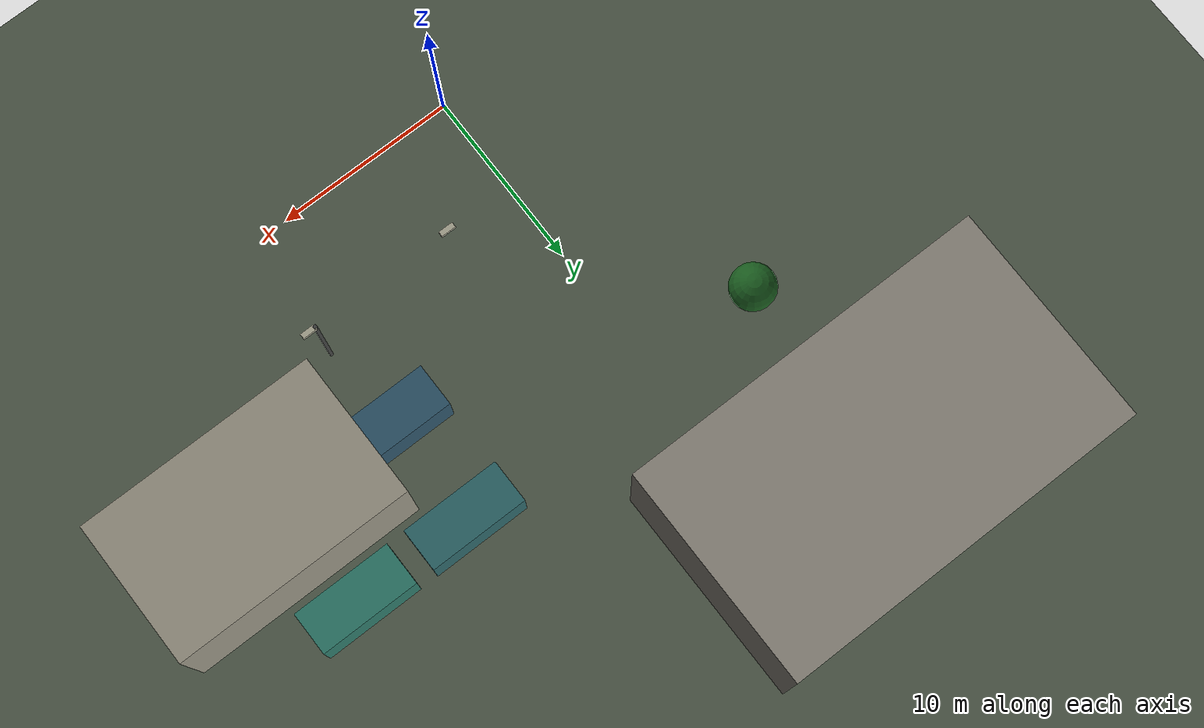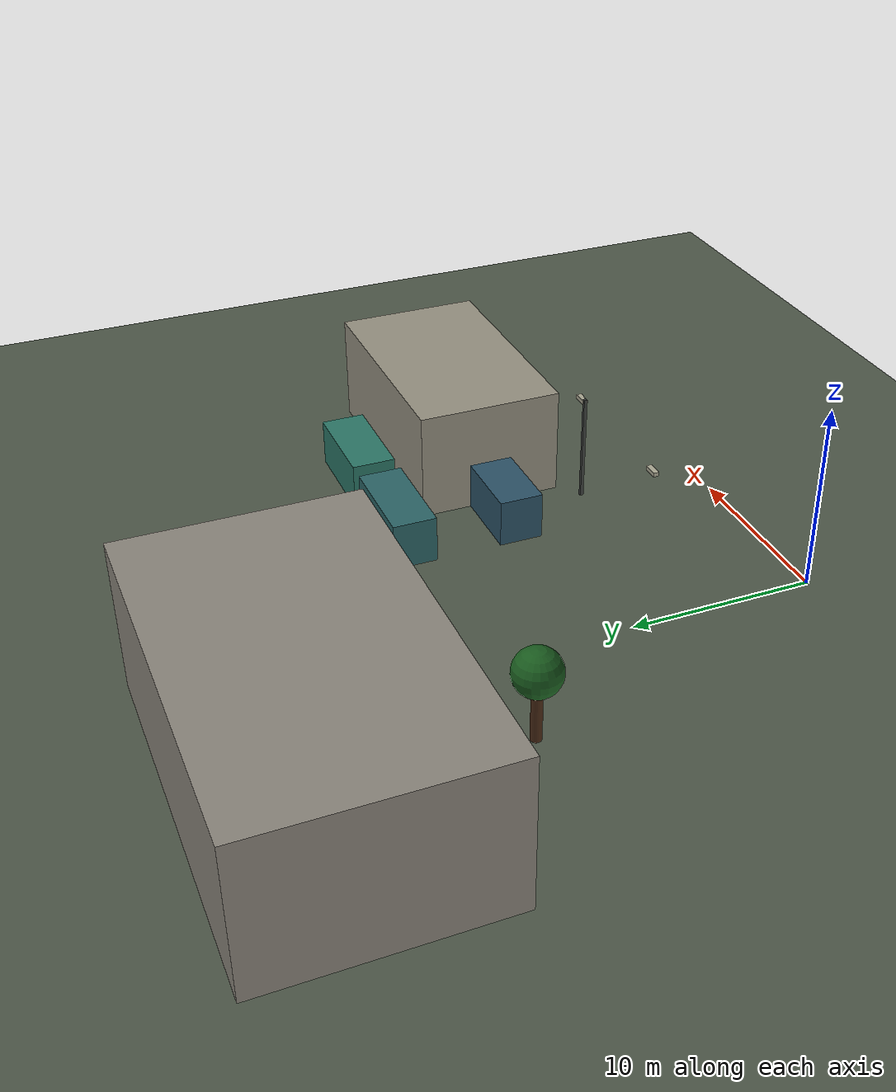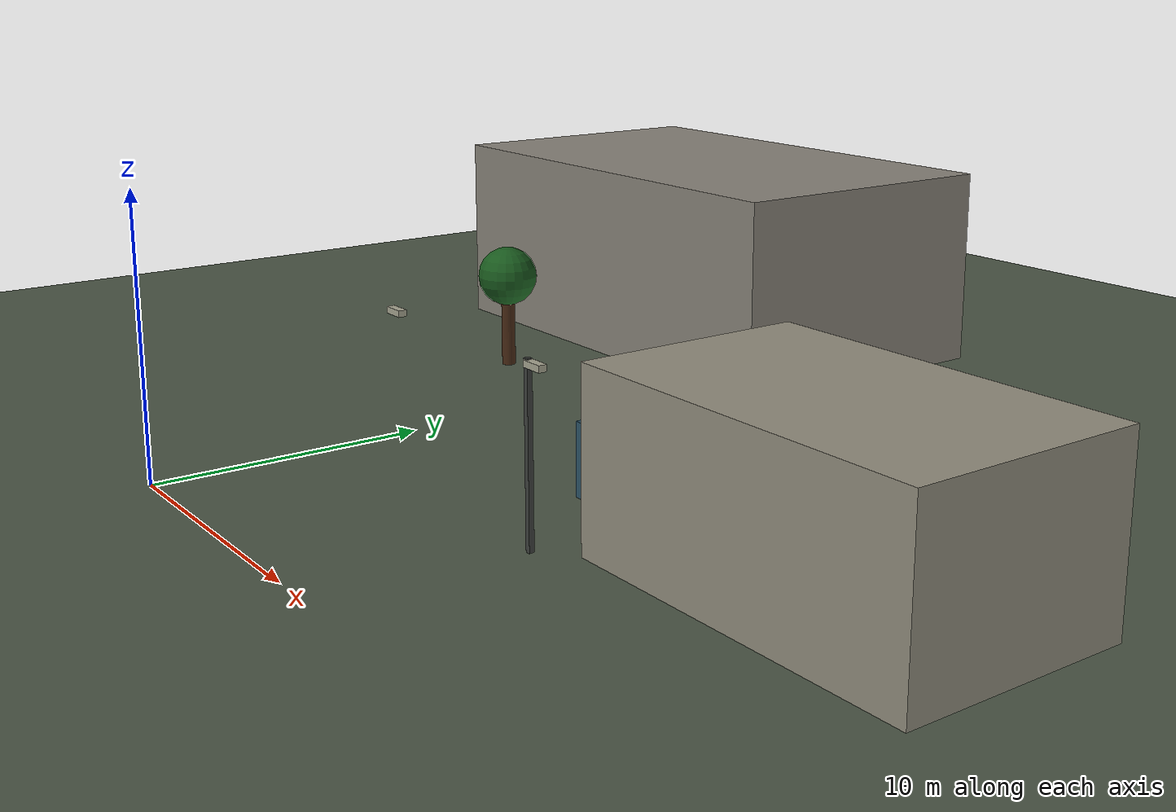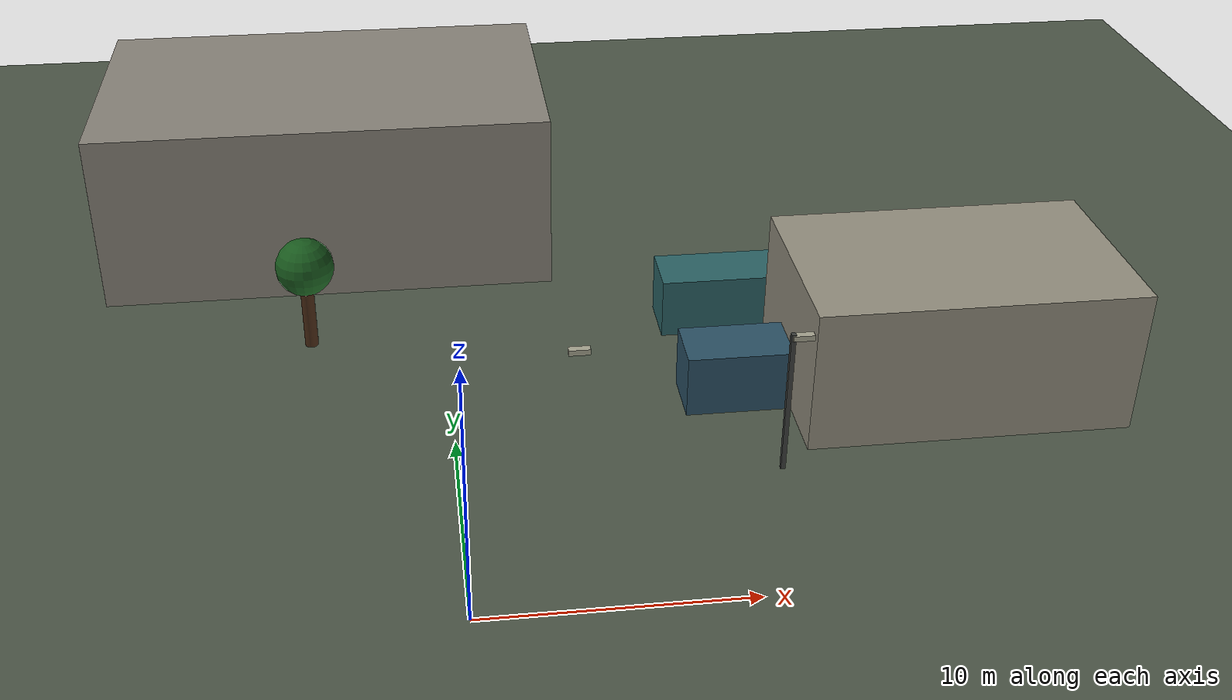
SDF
<sdf version="1.9">
 <world name="gsi_search_world_v2_industrial">
  <model name="ground_plane">
   <static>true</static>
   <link name="link">
    <collision name="collision">
     <geometry><plane><normal>0 0 1</normal><size>130 110</size></plane></geometry>
    </collision>
    <visual name="visual">
     <geometry><plane><normal>0 0 1</normal><size>130 110</size></plane></geometry>
     <material>
      <ambient>0.3 0.34 0.28 1</ambient>
      <diffuse>0.3 0.34 0.28 1</diffuse>
      <specular>0.12 0.12 0.12 1</specular>
     </material>
    </visual>
   </link>
  </model>
  <model name="warehouse-b">
   <static>true</static>
   <pose>-5 28 4 0 0 0</pose>
   <link name="link">
    <collision name="collision"><geometry><box><size>20 12 8</size></box></geometry></collision>
    <visual name="visual">
     <geometry><box><size>20 12 8</size></box></geometry>
     <material>
      <ambient>0.54 0.52 0.48 1</ambient>
      <diffuse>0.54 0.52 0.48 1</diffuse>
      <specular>0.12 0.12 0.12 1</specular>
     </material>
    </visual>
   </link>
  </model>
  <model name="dispatch-office">
   <static>true</static>
   <pose>20 12 3 0 0 0</pose>
   <link name="link">
    <collision name="collision"><geometry><box><size>13 8 6</size></box></geometry></collision>
    <visual name="visual">
     <geometry><box><size>13 8 6</size></box></geometry>
     <material>
      <ambient>0.58 0.56 0.5 1</ambient>
      <diffuse>0.58 0.56 0.5 1</diffuse>
      <specular>0.12 0.12 0.12 1</specular>
     </material>
    </visual>
   </link>
  </model>
  <model name="tree-01">
   <static>true</static>
   <pose>-10.3892 25.4747 0 0 0 0</pose>
   <link name="tree">
    <collision name="trunk_collision">
     <pose>0 0 2.00491 0 0 0</pose>
     <geometry><cylinder><radius>0.32</radius><length>4.00982</length></cylinder></geometry>
    </collision>
    <visual name="trunk">
     <pose>0 0 2.00491 0 0 0</pose>
     <geometry><cylinder><radius>0.28</radius><length>4.00982</length></cylinder></geometry>
     <material>
      <ambient>0.28 0.16 0.08 1</ambient>
      <diffuse>0.28 0.16 0.08 1</diffuse>
      <specular>0.12 0.12 0.12 1</specular>
     </material>
    </visual>
    <visual name="canopy">
     <pose>0 0 4.46809 0 0 0</pose>
     <geometry><sphere><radius>1.43208</radius></sphere></geometry>
     <material>
      <ambient>0.1 0.36 0.12 1</ambient>
      <diffuse>0.1 0.36 0.12 1</diffuse>
      <specular>0.12 0.12 0.12 1</specular>
     </material>
    </visual>
   </link>
  </model>
  <model name="tree-06">
   <static>true</static>
   <pose>-5.77109 17.8427 0 0 0 0</pose>
   <link name="tree">
    <collision name="trunk_collision">
     <pose>0 0 1.70983 0 0 0</pose>
     <geometry><cylinder><radius>0.32</radius><length>3.41966</length></cylinder></geometry>
    </collision>
    <visual name="trunk">
     <pose>0 0 1.70983 0 0 0</pose>
     <geometry><cylinder><radius>0.28</radius><length>3.41966</length></cylinder></geometry>
     <material>
      <ambient>0.28 0.16 0.08 1</ambient>
      <diffuse>0.28 0.16 0.08 1</diffuse>
      <specular>0.12 0.12 0.12 1</specular>
     </material>
    </visual>
    <visual name="canopy">
     <pose>0 0 3.81048 0 0 0</pose>
     <geometry><sphere><radius>1.22131</radius></sphere></geometry>
     <material>
      <ambient>0.1 0.36 0.12 1</ambient>
      <diffuse>0.1 0.36 0.12 1</diffuse>
      <specular>0.12 0.12 0.12 1</specular>
     </material>
    </visual>
   </link>
  </model>
  <model name="container-01">
   <static>true</static>
   <pose>12 12 1.3 0 0 0</pose>
   <link name="link">
    <collision name="collision"><geometry><box><size>5.5 2.4 2.6</size></box></geometry></collision>
    <visual name="visual">
     <geometry><box><size>5.5 2.4 2.6</size></box></geometry>
     <material>
      <ambient>0.17 0.32 0.4 1</ambient>
      <diffuse>0.17 0.32 0.4 1</diffuse>
      <specular>0.12 0.12 0.12 1</specular>
     </material>
    </visual>
   </link>
  </model>
  <model name="container-02">
   <static>true</static>
   <pose>18.5 12 1.3 0 0 0</pose>
   <link name="link">
    <collision name="collision"><geometry><box><size>5.5 2.4 2.6</size></box></geometry></collision>
    <visual name="visual">
     <geometry><box><size>5.5 2.4 2.6</size></box></geometry>
     <material>
      <ambient>0.17 0.39 0.4 1</ambient>
      <diffuse>0.17 0.39 0.4 1</diffuse>
      <specular>0.12 0.12 0.12 1</specular>
     </material>
    </visual>
   </link>
  </model>
  <model name="container-08">
   <static>true</static>
   <pose>12 18 1.3 0 0 0</pose>
   <link name="link">
    <collision name="collision"><geometry><box><size>5.5 2.4 2.6</size></box></geometry></collision>
    <visual name="visual">
     <geometry><box><size>5.5 2.4 2.6</size></box></geometry>
     <material>
      <ambient>0.17 0.39 0.4 1</ambient>
      <diffuse>0.17 0.39 0.4 1</diffuse>
      <specular>0.12 0.12 0.12 1</specular>
     </material>
    </visual>
   </link>
  </model>
  <model name="container-09">
   <static>true</static>
   <pose>18.5 18 1.3 0 0 0</pose>
   <link name="link">
    <collision name="collision"><geometry><box><size>5.5 2.4 2.6</size></box></geometry></collision>
    <visual name="visual">
     <geometry><box><size>5.5 2.4 2.6</size></box></geometry>
     <material>
      <ambient>0.17 0.46 0.4 1</ambient>
      <diffuse>0.17 0.46 0.4 1</diffuse>
      <specular>0.12 0.12 0.12 1</specular>
     </material>
    </visual>
   </link>
  </model>
  <model name="utility-pole-06-lamp">
   <static>true</static>
   <pose>4.47091 7 5.85 0 0 0</pose>
   <link name="link">
    <visual name="visual">
     <geometry><box><size>0.8 0.28 0.22</size></box></geometry>
     <material>
      <ambient>0.66 0.65 0.57 1</ambient>
      <diffuse>0.66 0.65 0.57 1</diffuse>
      <specular>0.12 0.12 0.12 1</specular>
     </material>
    </visual>
   </link>
  </model>
  <model name="utility-pole-07">
   <static>true</static>
   <pose>12.2727 7 3 0 0 0</pose>
   <link name="link">
    <collision name="collision"><geometry><box><size>0.18 0.18 6</size></box></geometry></collision>
    <visual name="visual">
     <geometry><box><size>0.18 0.18 6</size></box></geometry>
     <material>
      <ambient>0.24 0.25 0.24 1</ambient>
      <diffuse>0.24 0.25 0.24 1</diffuse>
      <specular>0.12 0.12 0.12 1</specular>
     </material>
    </visual>
   </link>
  </model>
  <model name="utility-pole-07-lamp">
   <static>true</static>
   <pose>12.6527 7 5.85 0 0 0</pose>
   <link name="link">
    <visual name="visual">
     <geometry><box><size>0.8 0.28 0.22</size></box></geometry>
     <material>
      <ambient>0.66 0.65 0.57 1</ambient>
      <diffuse>0.66 0.65 0.57 1</diffuse>
      <specular>0.12 0.12 0.12 1</specular>
     </material>
    </visual>
   </link>
  </model>
 </world>
</sdf>
